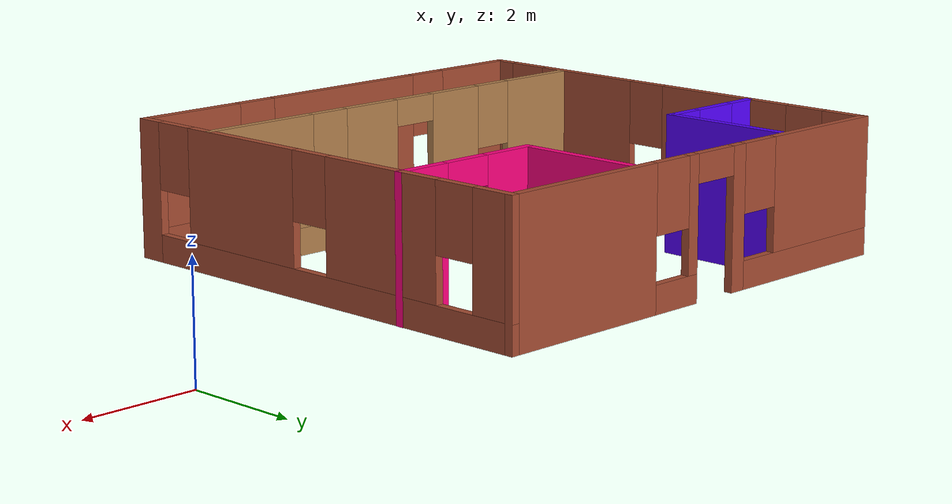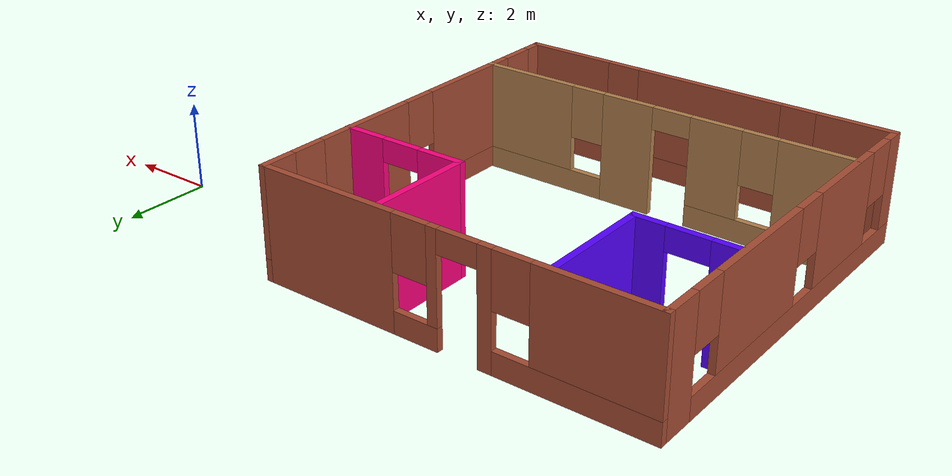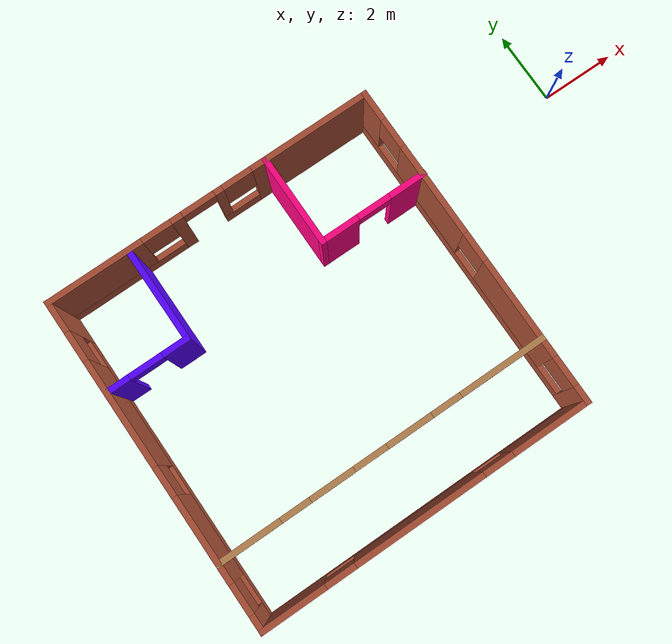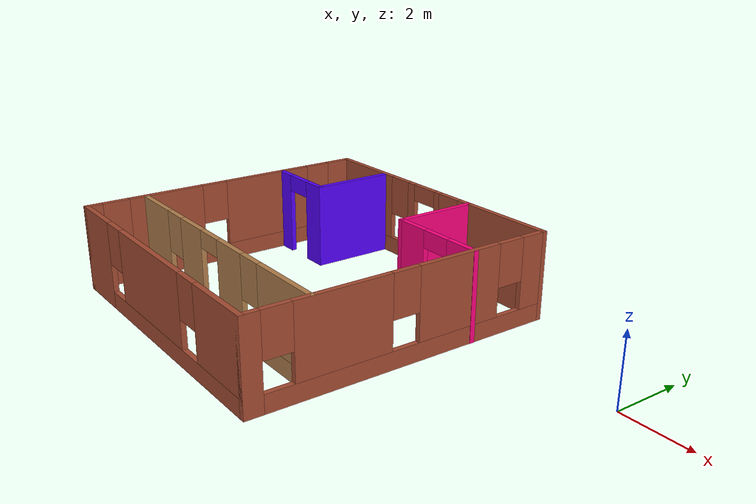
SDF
<?xml version='1.0'?>
<sdf version='1.6'>
  <model name='mybuilding'>
    <pose frame=''>-8.84197 -2.38152 0 0 -0 0</pose>
    <link name='Wall_1'>
      <pose frame=''>-4.43 0 0 0 0 -1.5708</pose>
      <visual name='Wall_1_Visual_0'>
        <pose frame=''>-4.0525 0 1.25 0 -0 0</pose>
        <geometry>
          <box>
            <size>0.895 0.15 2.5</size>
          </box>
        </geometry>
        <material>
          <script>
            <uri>file://media/materials/scripts/gazebo.material</uri>
            <name>Gazebo/Bricks</name>
          </script>
          <ambient>1 1 1 1</ambient>
        </material>
        <meta>
          <layer>0</layer>
        </meta>
      </visual>
      <collision name='Wall_1_Collision_0'>
        <geometry>
          <box>
            <size>0.895 0.15 2.5</size>
          </box>
        </geometry>
        <pose frame=''>-4.0525 0 1.25 0 -0 0</pose>
      </collision>
      <visual name='Wall_1_Visual_1'>
        <pose frame=''>0.4475 0 0.25 0 -0 0</pose>
        <geometry>
          <box>
            <size>8.105 0.15 0.5</size>
          </box>
        </geometry>
        <material>
          <script>
            <uri>file://media/materials/scripts/gazebo.material</uri>
            <name>Gazebo/Bricks</name>
          </script>
          <ambient>1 1 1 1</ambient>
        </material>
        <meta>
          <layer>0</layer>
        </meta>
      </visual>
      <collision name='Wall_1_Collision_1'>
        <geometry>
          <box>
            <size>8.105 0.15 0.5</size>
          </box>
        </geometry>
        <pose frame=''>0.4475 0 0.25 0 -0 0</pose>
      </collision>
      <visual name='Wall_1_Visual_2'>
        <pose frame=''>-1.355 0 1.5 0 -0 0</pose>
        <geometry>
          <box>
            <size>2.9 0.15 2</size>
          </box>
        </geometry>
        <material>
          <script>
            <uri>file://media/materials/scripts/gazebo.material</uri>
            <name>Gazebo/Bricks</name>
          </script>
          <ambient>1 1 1 1</ambient>
        </material>
        <meta>
          <layer>0</layer>
        </meta>
      </visual>
      <collision name='Wall_1_Collision_2'>
        <geometry>
          <box>
            <size>2.9 0.15 2</size>
          </box>
        </geometry>
        <pose frame=''>-1.355 0 1.5 0 -0 0</pose>
      </collision>
      <visual name='Wall_1_Visual_3'>
        <pose frame=''>2.045 0 1.5 0 -0 0</pose>
        <geometry>
          <box>
            <size>2.3 0.15 2</size>
          </box>
        </geometry>
        <material>
          <script>
            <uri>file://media/materials/scripts/gazebo.material</uri>
            <name>Gazebo/Bricks</name>
          </script>
          <ambient>1 1 1 1</ambient>
        </material>
        <meta>
          <layer>0</layer>
        </meta>
      </visual>
      <collision name='Wall_1_Collision_3'>
        <geometry>
          <box>
            <size>2.3 0.15 2</size>
          </box>
        </geometry>
        <pose frame=''>2.045 0 1.5 0 -0 0</pose>
      </collision>
      <visual name='Wall_1_Visual_4'>
        <pose frame=''>4.2475 0 1.5 0 -0 0</pose>
        <geometry>
          <box>
            <size>0.505 0.15 2</size>
          </box>
        </geometry>
        <material>
          <script>
            <uri>file://media/materials/scripts/gazebo.material</uri>
            <name>Gazebo/Bricks</name>
          </script>
          <ambient>1 1 1 1</ambient>
        </material>
        <meta>
          <layer>0</layer>
        </meta>
      </visual>
      <collision name='Wall_1_Collision_4'>
        <geometry>
          <box>
            <size>0.505 0.15 2</size>
          </box>
        </geometry>
        <pose frame=''>4.2475 0 1.5 0 -0 0</pose>
      </collision>
      <visual name='Wall_1_Visual_5'>
        <pose frame=''>-3.205 0 1.9 0 -0 0</pose>
        <geometry>
          <box>
            <size>0.8 0.15 1.2</size>
          </box>
        </geometry>
        <material>
          <script>
            <uri>file://media/materials/scripts/gazebo.material</uri>
            <name>Gazebo/Bricks</name>
          </script>
          <ambient>1 1 1 1</ambient>
        </material>
        <meta>
          <layer>0</layer>
        </meta>
      </visual>
      <collision name='Wall_1_Collision_5'>
        <geometry>
          <box>
            <size>0.8 0.15 1.2</size>
          </box>
        </geometry>
        <pose frame=''>-3.205 0 1.9 0 -0 0</pose>
      </collision>
      <visual name='Wall_1_Visual_6'>
        <pose frame=''>0.495 0 1.9 0 -0 0</pose>
        <geometry>
          <box>
            <size>0.8 0.15 1.2</size>
          </box>
        </geometry>
        <material>
          <script>
            <uri>file://media/materials/scripts/gazebo.material</uri>
            <name>Gazebo/Bricks</name>
          </script>
          <ambient>1 1 1 1</ambient>
        </material>
        <meta>
          <layer>0</layer>
        </meta>
      </visual>
      <collision name='Wall_1_Collision_6'>
        <geometry>
          <box>
            <size>0.8 0.15 1.2</size>
          </box>
        </geometry>
        <pose frame=''>0.495 0 1.9 0 -0 0</pose>
      </collision>
      <visual name='Wall_1_Visual_7'>
        <pose frame=''>3.595 0 1.9 0 -0 0</pose>
        <geometry>
          <box>
            <size>0.8 0.15 1.2</size>
          </box>
        </geometry>
        <material>
          <script>
            <uri>file://media/materials/scripts/gazebo.material</uri>
            <name>Gazebo/Bricks</name>
          </script>
          <ambient>1 1 1 1</ambient>
        </material>
        <meta>
          <layer>0</layer>
        </meta>
      </visual>
      <collision name='Wall_1_Collision_7'>
        <geometry>
          <box>
            <size>0.8 0.15 1.2</size>
          </box>
        </geometry>
        <pose frame=''>3.595 0 1.9 0 -0 0</pose>
      </collision>
    </link>
    <link name='Wall_10'>
      <collision name='Wall_10_Collision'>
        <geometry>
          <box>
            <size>2.5 0.15 2.5</size>
          </box>
        </geometry>
        <pose frame=''>0 0 1.25 0 -0 0</pose>
      </collision>
      <visual name='Wall_10_Visual'>
        <pose frame=''>0 0 1.25 0 -0 0</pose>
        <geometry>
          <box>
            <size>2.5 0.15 2.5</size>
          </box>
        </geometry>
        <material>
          <script>
            <uri>file://media/materials/scripts/gazebo.material</uri>
            <name>Gazebo/Grey</name>
          </script>
          <ambient>1 0 0.498039 1</ambient>
        </material>
        <meta>
          <layer>0</layer>
        </meta>
      </visual>
      <pose frame=''>1.58 3.22 0 0 -0 1.5708</pose>
    </link>
    <link name='Wall_13'>
      <pose frame=''>-0.004999 -2.675 0 0 -0 0</pose>
      <visual name='Wall_13_Visual_0'>
        <pose frame=''>-3.6325 0 1.25 0 -0 0</pose>
        <geometry>
          <box>
            <size>1.735 0.15 2.5</size>
          </box>
        </geometry>
        <material>
          <script>
            <uri>file://media/materials/scripts/gazebo.material</uri>
            <name>Gazebo/Wood</name>
          </script>
          <ambient>1 1 1 1</ambient>
        </material>
        <meta>
          <layer>0</layer>
        </meta>
      </visual>
      <collision name='Wall_13_Collision_0'>
        <geometry>
          <box>
            <size>1.735 0.15 2.5</size>
          </box>
        </geometry>
        <pose frame=''>-3.6325 0 1.25 0 -0 0</pose>
      </collision>
      <visual name='Wall_13_Visual_1'>
        <pose frame=''>0.74 0 1.25 0 -0 0</pose>
        <geometry>
          <box>
            <size>1.23 0.15 2.5</size>
          </box>
        </geometry>
        <material>
          <script>
            <uri>file://media/materials/scripts/gazebo.material</uri>
            <name>Gazebo/Wood</name>
          </script>
          <ambient>1 1 1 1</ambient>
        </material>
        <meta>
          <layer>0</layer>
        </meta>
      </visual>
      <collision name='Wall_13_Collision_1'>
        <geometry>
          <box>
            <size>1.23 0.15 2.5</size>
          </box>
        </geometry>
        <pose frame=''>0.74 0 1.25 0 -0 0</pose>
      </collision>
      <visual name='Wall_13_Visual_2'>
        <pose frame=''>-1.77 0 0.25 0 -0 0</pose>
        <geometry>
          <box>
            <size>1.99 0.15 0.5</size>
          </box>
        </geometry>
        <material>
          <script>
            <uri>file://media/materials/scripts/gazebo.material</uri>
            <name>Gazebo/Wood</name>
          </script>
          <ambient>1 1 1 1</ambient>
        </material>
        <meta>
          <layer>0</layer>
        </meta>
      </visual>
      <collision name='Wall_13_Collision_2'>
        <geometry>
          <box>
            <size>1.99 0.15 0.5</size>
          </box>
        </geometry>
        <pose frame=''>-1.77 0 0.25 0 -0 0</pose>
      </collision>
      <visual name='Wall_13_Visual_3'>
        <pose frame=''>2.9275 0 0.25 0 -0 0</pose>
        <geometry>
          <box>
            <size>3.145 0.15 0.5</size>
          </box>
        </geometry>
        <material>
          <script>
            <uri>file://media/materials/scripts/gazebo.material</uri>
            <name>Gazebo/Wood</name>
          </script>
          <ambient>1 1 1 1</ambient>
        </material>
        <meta>
          <layer>0</layer>
        </meta>
      </visual>
      <collision name='Wall_13_Collision_3'>
        <geometry>
          <box>
            <size>3.145 0.15 0.5</size>
          </box>
        </geometry>
        <pose frame=''>2.9275 0 0.25 0 -0 0</pose>
      </collision>
      <visual name='Wall_13_Visual_4'>
        <pose frame=''>-1.37 0 1.5 0 -0 0</pose>
        <geometry>
          <box>
            <size>1.19 0.15 2</size>
          </box>
        </geometry>
        <material>
          <script>
            <uri>file://media/materials/scripts/gazebo.material</uri>
            <name>Gazebo/Wood</name>
          </script>
          <ambient>1 1 1 1</ambient>
        </material>
        <meta>
          <layer>0</layer>
        </meta>
      </visual>
      <collision name='Wall_13_Collision_4'>
        <geometry>
          <box>
            <size>1.19 0.15 2</size>
          </box>
        </geometry>
        <pose frame=''>-1.37 0 1.5 0 -0 0</pose>
      </collision>
      <visual name='Wall_13_Visual_5'>
        <pose frame=''>-1.37 0 1.5 0 -0 0</pose>
        <geometry>
          <box>
            <size>1.19 0.15 2</size>
          </box>
        </geometry>
        <material>
          <script>
            <uri>file://media/materials/scripts/gazebo.material</uri>
            <name>Gazebo/Wood</name>
          </script>
          <ambient>1 1 1 1</ambient>
        </material>
        <meta>
          <layer>0</layer>
        </meta>
      </visual>
      <collision name='Wall_13_Collision_5'>
        <geometry>
          <box>
            <size>1.19 0.15 2</size>
          </box>
        </geometry>
        <pose frame=''>-1.37 0 1.5 0 -0 0</pose>
      </collision>
      <visual name='Wall_13_Visual_6'>
        <pose frame=''>3.3275 0 1.5 0 -0 0</pose>
        <geometry>
          <box>
            <size>2.345 0.15 2</size>
          </box>
        </geometry>
        <material>
          <script>
            <uri>file://media/materials/scripts/gazebo.material</uri>
            <name>Gazebo/Wood</name>
          </script>
          <ambient>1 1 1 1</ambient>
        </material>
        <meta>
          <layer>0</layer>
        </meta>
      </visual>
      <collision name='Wall_13_Collision_6'>
        <geometry>
          <box>
            <size>2.345 0.15 2</size>
          </box>
        </geometry>
        <pose frame=''>3.3275 0 1.5 0 -0 0</pose>
      </collision>
      <visual name='Wall_13_Visual_7'>
        <pose frame=''>-2.365 0 1.9 0 -0 0</pose>
        <geometry>
          <box>
            <size>0.8 0.15 1.2</size>
          </box>
        </geometry>
        <material>
          <script>
            <uri>file://media/materials/scripts/gazebo.material</uri>
            <name>Gazebo/Wood</name>
          </script>
          <ambient>1 1 1 1</ambient>
        </material>
        <meta>
          <layer>0</layer>
        </meta>
      </visual>
      <collision name='Wall_13_Collision_7'>
        <geometry>
          <box>
            <size>0.8 0.15 1.2</size>
          </box>
        </geometry>
        <pose frame=''>-2.365 0 1.9 0 -0 0</pose>
      </collision>
      <visual name='Wall_13_Visual_8'>
        <pose frame=''>1.755 0 1.9 0 -0 0</pose>
        <geometry>
          <box>
            <size>0.8 0.15 1.2</size>
          </box>
        </geometry>
        <material>
          <script>
            <uri>file://media/materials/scripts/gazebo.material</uri>
            <name>Gazebo/Wood</name>
          </script>
          <ambient>1 1 1 1</ambient>
        </material>
        <meta>
          <layer>0</layer>
        </meta>
      </visual>
      <collision name='Wall_13_Collision_8'>
        <geometry>
          <box>
            <size>0.8 0.15 1.2</size>
          </box>
        </geometry>
        <pose frame=''>1.755 0 1.9 0 -0 0</pose>
      </collision>
      <visual name='Wall_13_Visual_9'>
        <pose frame=''>-0.325 0 2.25 0 -0 0</pose>
        <geometry>
          <box>
            <size>0.9 0.15 0.5</size>
          </box>
        </geometry>
        <material>
          <script>
            <uri>file://media/materials/scripts/gazebo.material</uri>
            <name>Gazebo/Wood</name>
          </script>
          <ambient>1 1 1 1</ambient>
        </material>
        <meta>
          <layer>0</layer>
        </meta>
      </visual>
      <collision name='Wall_13_Collision_9'>
        <geometry>
          <box>
            <size>0.9 0.15 0.5</size>
          </box>
        </geometry>
        <pose frame=''>-0.325 0 2.25 0 -0 0</pose>
      </collision>
      <visual name='Wall_13_Visual_10'>
        <pose frame=''>-0.325 0 2.25 0 -0 0</pose>
        <geometry>
          <box>
            <size>0.9 0.15 0.5</size>
          </box>
        </geometry>
        <material>
          <script>
            <uri>file://media/materials/scripts/gazebo.material</uri>
            <name>Gazebo/Wood</name>
          </script>
          <ambient>1 1 1 1</ambient>
        </material>
        <meta>
          <layer>0</layer>
        </meta>
      </visual>
      <collision name='Wall_13_Collision_10'>
        <geometry>
          <box>
            <size>0.9 0.15 0.5</size>
          </box>
        </geometry>
        <pose frame=''>-0.325 0 2.25 0 -0 0</pose>
      </collision>
    </link>
    <link name='Wall_2'>
      <pose frame=''>-0.004999 -4.425 0 0 -0 0</pose>
      <visual name='Wall_2_Visual_0'>
        <pose frame=''>-3.6225 0 1.25 0 -0 0</pose>
        <geometry>
          <box>
            <size>1.755 0.15 2.5</size>
          </box>
        </geometry>
        <material>
          <script>
            <uri>file://media/materials/scripts/gazebo.material</uri>
            <name>Gazebo/Bricks</name>
          </script>
          <ambient>1 1 1 1</ambient>
        </material>
        <meta>
          <layer>0</layer>
        </meta>
      </visual>
      <collision name='Wall_2_Collision_0'>
        <geometry>
          <box>
            <size>1.755 0.15 2.5</size>
          </box>
        </geometry>
        <pose frame=''>-3.6225 0 1.25 0 -0 0</pose>
      </collision>
      <visual name='Wall_2_Visual_1'>
        <pose frame=''>0.8775 0 0.25 0 -0 0</pose>
        <geometry>
          <box>
            <size>7.245 0.15 0.5</size>
          </box>
        </geometry>
        <material>
          <script>
            <uri>file://media/materials/scripts/gazebo.material</uri>
            <name>Gazebo/Bricks</name>
          </script>
          <ambient>1 1 1 1</ambient>
        </material>
        <meta>
          <layer>0</layer>
        </meta>
      </visual>
      <collision name='Wall_2_Collision_1'>
        <geometry>
          <box>
            <size>7.245 0.15 0.5</size>
          </box>
        </geometry>
        <pose frame=''>0.8775 0 0.25 0 -0 0</pose>
      </collision>
      <visual name='Wall_2_Visual_2'>
        <pose frame=''>-0.195 0 1.5 0 -0 0</pose>
        <geometry>
          <box>
            <size>3.5 0.15 2</size>
          </box>
        </geometry>
        <material>
          <script>
            <uri>file://media/materials/scripts/gazebo.material</uri>
            <name>Gazebo/Bricks</name>
          </script>
          <ambient>1 1 1 1</ambient>
        </material>
        <meta>
          <layer>0</layer>
        </meta>
      </visual>
      <collision name='Wall_2_Collision_2'>
        <geometry>
          <box>
            <size>3.5 0.15 2</size>
          </box>
        </geometry>
        <pose frame=''>-0.195 0 1.5 0 -0 0</pose>
      </collision>
      <visual name='Wall_2_Visual_3'>
        <pose frame=''>3.4275 0 1.5 0 -0 0</pose>
        <geometry>
          <box>
            <size>2.145 0.15 2</size>
          </box>
        </geometry>
        <material>
          <script>
            <uri>file://media/materials/scripts/gazebo.material</uri>
            <name>Gazebo/Bricks</name>
          </script>
          <ambient>1 1 1 1</ambient>
        </material>
        <meta>
          <layer>0</layer>
        </meta>
      </visual>
      <collision name='Wall_2_Collision_3'>
        <geometry>
          <box>
            <size>2.145 0.15 2</size>
          </box>
        </geometry>
        <pose frame=''>3.4275 0 1.5 0 -0 0</pose>
      </collision>
      <visual name='Wall_2_Visual_4'>
        <pose frame=''>-2.345 0 1.9 0 -0 0</pose>
        <geometry>
          <box>
            <size>0.8 0.15 1.2</size>
          </box>
        </geometry>
        <material>
          <script>
            <uri>file://media/materials/scripts/gazebo.material</uri>
            <name>Gazebo/Bricks</name>
          </script>
          <ambient>1 1 1 1</ambient>
        </material>
        <meta>
          <layer>0</layer>
        </meta>
      </visual>
      <collision name='Wall_2_Collision_4'>
        <geometry>
          <box>
            <size>0.8 0.15 1.2</size>
          </box>
        </geometry>
        <pose frame=''>-2.345 0 1.9 0 -0 0</pose>
      </collision>
      <visual name='Wall_2_Visual_5'>
        <pose frame=''>1.955 0 1.9 0 -0 0</pose>
        <geometry>
          <box>
            <size>0.8 0.15 1.2</size>
          </box>
        </geometry>
        <material>
          <script>
            <uri>file://media/materials/scripts/gazebo.material</uri>
            <name>Gazebo/Bricks</name>
          </script>
          <ambient>1 1 1 1</ambient>
        </material>
        <meta>
          <layer>0</layer>
        </meta>
      </visual>
      <collision name='Wall_2_Collision_5'>
        <geometry>
          <box>
            <size>0.8 0.15 1.2</size>
          </box>
        </geometry>
        <pose frame=''>1.955 0 1.9 0 -0 0</pose>
      </collision>
    </link>
    <link name='Wall_3'>
      <pose frame=''>4.42 0 0 0 -0 1.5708</pose>
      <visual name='Wall_3_Visual_0'>
        <pose frame=''>-4.2375 0 1.25 0 -0 0</pose>
        <geometry>
          <box>
            <size>0.525 0.15 2.5</size>
          </box>
        </geometry>
        <material>
          <script>
            <uri>file://media/materials/scripts/gazebo.material</uri>
            <name>Gazebo/Bricks</name>
          </script>
          <ambient>1 1 1 1</ambient>
        </material>
        <meta>
          <layer>0</layer>
        </meta>
      </visual>
      <collision name='Wall_3_Collision_0'>
        <geometry>
          <box>
            <size>0.525 0.15 2.5</size>
          </box>
        </geometry>
        <pose frame=''>-4.2375 0 1.25 0 -0 0</pose>
      </collision>
      <visual name='Wall_3_Visual_1'>
        <pose frame=''>0.2625 0 0.25 0 -0 0</pose>
        <geometry>
          <box>
            <size>8.475 0.15 0.5</size>
          </box>
        </geometry>
        <material>
          <script>
            <uri>file://media/materials/scripts/gazebo.material</uri>
            <name>Gazebo/Bricks</name>
          </script>
          <ambient>1 1 1 1</ambient>
        </material>
        <meta>
          <layer>0</layer>
        </meta>
      </visual>
      <collision name='Wall_3_Collision_1'>
        <geometry>
          <box>
            <size>8.475 0.15 0.5</size>
          </box>
        </geometry>
        <pose frame=''>0.2625 0 0.25 0 -0 0</pose>
      </collision>
      <visual name='Wall_3_Visual_2'>
        <pose frame=''>-1.825 0 1.5 0 -0 0</pose>
        <geometry>
          <box>
            <size>2.7 0.15 2</size>
          </box>
        </geometry>
        <material>
          <script>
            <uri>file://media/materials/scripts/gazebo.material</uri>
            <name>Gazebo/Bricks</name>
          </script>
          <ambient>1 1 1 1</ambient>
        </material>
        <meta>
          <layer>0</layer>
        </meta>
      </visual>
      <collision name='Wall_3_Collision_2'>
        <geometry>
          <box>
            <size>2.7 0.15 2</size>
          </box>
        </geometry>
        <pose frame=''>-1.825 0 1.5 0 -0 0</pose>
      </collision>
      <visual name='Wall_3_Visual_3'>
        <pose frame=''>1.595 0 1.5 0 -0 0</pose>
        <geometry>
          <box>
            <size>2.54 0.15 2</size>
          </box>
        </geometry>
        <material>
          <script>
            <uri>file://media/materials/scripts/gazebo.material</uri>
            <name>Gazebo/Bricks</name>
          </script>
          <ambient>1 1 1 1</ambient>
        </material>
        <meta>
          <layer>0</layer>
        </meta>
      </visual>
      <collision name='Wall_3_Collision_3'>
        <geometry>
          <box>
            <size>2.54 0.15 2</size>
          </box>
        </geometry>
        <pose frame=''>1.595 0 1.5 0 -0 0</pose>
      </collision>
      <visual name='Wall_3_Visual_4'>
        <pose frame=''>4.0825 0 1.5 0 -0 0</pose>
        <geometry>
          <box>
            <size>0.835 0.15 2</size>
          </box>
        </geometry>
        <material>
          <script>
            <uri>file://media/materials/scripts/gazebo.material</uri>
            <name>Gazebo/Bricks</name>
          </script>
          <ambient>1 1 1 1</ambient>
        </material>
        <meta>
          <layer>0</layer>
        </meta>
      </visual>
      <collision name='Wall_3_Collision_4'>
        <geometry>
          <box>
            <size>0.835 0.15 2</size>
          </box>
        </geometry>
        <pose frame=''>4.0825 0 1.5 0 -0 0</pose>
      </collision>
      <visual name='Wall_3_Visual_5'>
        <pose frame=''>-3.575 0 1.9 0 -0 0</pose>
        <geometry>
          <box>
            <size>0.8 0.15 1.2</size>
          </box>
        </geometry>
        <material>
          <script>
            <uri>file://media/materials/scripts/gazebo.material</uri>
            <name>Gazebo/Bricks</name>
          </script>
          <ambient>1 1 1 1</ambient>
        </material>
        <meta>
          <layer>0</layer>
        </meta>
      </visual>
      <collision name='Wall_3_Collision_5'>
        <geometry>
          <box>
            <size>0.8 0.15 1.2</size>
          </box>
        </geometry>
        <pose frame=''>-3.575 0 1.9 0 -0 0</pose>
      </collision>
      <visual name='Wall_3_Visual_6'>
        <pose frame=''>-0.075 0 1.9 0 -0 0</pose>
        <geometry>
          <box>
            <size>0.8 0.15 1.2</size>
          </box>
        </geometry>
        <material>
          <script>
            <uri>file://media/materials/scripts/gazebo.material</uri>
            <name>Gazebo/Bricks</name>
          </script>
          <ambient>1 1 1 1</ambient>
        </material>
        <meta>
          <layer>0</layer>
        </meta>
      </visual>
      <collision name='Wall_3_Collision_6'>
        <geometry>
          <box>
            <size>0.8 0.15 1.2</size>
          </box>
        </geometry>
        <pose frame=''>-0.075 0 1.9 0 -0 0</pose>
      </collision>
      <visual name='Wall_3_Visual_7'>
        <pose frame=''>3.265 0 1.9 0 -0 0</pose>
        <geometry>
          <box>
            <size>0.8 0.15 1.2</size>
          </box>
        </geometry>
        <material>
          <script>
            <uri>file://media/materials/scripts/gazebo.material</uri>
            <name>Gazebo/Bricks</name>
          </script>
          <ambient>1 1 1 1</ambient>
        </material>
        <meta>
          <layer>0</layer>
        </meta>
      </visual>
      <collision name='Wall_3_Collision_7'>
        <geometry>
          <box>
            <size>0.8 0.15 1.2</size>
          </box>
        </geometry>
        <pose frame=''>3.265 0 1.9 0 -0 0</pose>
      </collision>
    </link>
    <link name='Wall_4'>
      <pose frame=''>-0.004999 4.425 0 0 -0 3.14159</pose>
      <visual name='Wall_4_Visual_0'>
        <pose frame=''>-2.8375 0 1.25 0 -0 0</pose>
        <geometry>
          <box>
            <size>3.325 0.15 2.5</size>
          </box>
        </geometry>
        <material>
          <script>
            <uri>file://media/materials/scripts/gazebo.material</uri>
            <name>Gazebo/Bricks</name>
          </script>
          <ambient>1 1 1 1</ambient>
        </material>
        <meta>
          <layer>0</layer>
        </meta>
      </visual>
      <collision name='Wall_4_Collision_0'>
        <geometry>
          <box>
            <size>3.325 0.15 2.5</size>
          </box>
        </geometry>
        <pose frame=''>-2.8375 0 1.25 0 -0 0</pose>
      </collision>
      <visual name='Wall_4_Visual_1'>
        <pose frame=''>0.91 0 1.25 0 -0 0</pose>
        <geometry>
          <box>
            <size>0.31 0.15 2.5</size>
          </box>
        </geometry>
        <material>
          <script>
            <uri>file://media/materials/scripts/gazebo.material</uri>
            <name>Gazebo/Bricks</name>
          </script>
          <ambient>1 1 1 1</ambient>
        </material>
        <meta>
          <layer>0</layer>
        </meta>
      </visual>
      <collision name='Wall_4_Collision_1'>
        <geometry>
          <box>
            <size>0.31 0.15 2.5</size>
          </box>
        </geometry>
        <pose frame=''>0.91 0 1.25 0 -0 0</pose>
      </collision>
      <visual name='Wall_4_Visual_2'>
        <pose frame=''>-0.66 0 0.25 0 -0 0</pose>
        <geometry>
          <box>
            <size>1.03 0.15 0.5</size>
          </box>
        </geometry>
        <material>
          <script>
            <uri>file://media/materials/scripts/gazebo.material</uri>
            <name>Gazebo/Bricks</name>
          </script>
          <ambient>1 1 1 1</ambient>
        </material>
        <meta>
          <layer>0</layer>
        </meta>
      </visual>
      <collision name='Wall_4_Collision_2'>
        <geometry>
          <box>
            <size>1.03 0.15 0.5</size>
          </box>
        </geometry>
        <pose frame=''>-0.66 0 0.25 0 -0 0</pose>
      </collision>
      <visual name='Wall_4_Visual_3'>
        <pose frame=''>2.7825 0 0.25 0 -0 0</pose>
        <geometry>
          <box>
            <size>3.435 0.15 0.5</size>
          </box>
        </geometry>
        <material>
          <script>
            <uri>file://media/materials/scripts/gazebo.material</uri>
            <name>Gazebo/Bricks</name>
          </script>
          <ambient>1 1 1 1</ambient>
        </material>
        <meta>
          <layer>0</layer>
        </meta>
      </visual>
      <collision name='Wall_4_Collision_3'>
        <geometry>
          <box>
            <size>3.435 0.15 0.5</size>
          </box>
        </geometry>
        <pose frame=''>2.7825 0 0.25 0 -0 0</pose>
      </collision>
      <visual name='Wall_4_Visual_4'>
        <pose frame=''>-0.26 0 1.5 0 -0 0</pose>
        <geometry>
          <box>
            <size>0.23 0.15 2</size>
          </box>
        </geometry>
        <material>
          <script>
            <uri>file://media/materials/scripts/gazebo.material</uri>
            <name>Gazebo/Bricks</name>
          </script>
          <ambient>1 1 1 1</ambient>
        </material>
        <meta>
          <layer>0</layer>
        </meta>
      </visual>
      <collision name='Wall_4_Collision_4'>
        <geometry>
          <box>
            <size>0.23 0.15 2</size>
          </box>
        </geometry>
        <pose frame=''>-0.26 0 1.5 0 -0 0</pose>
      </collision>
      <visual name='Wall_4_Visual_5'>
        <pose frame=''>-0.26 0 1.5 0 -0 0</pose>
        <geometry>
          <box>
            <size>0.23 0.15 2</size>
          </box>
        </geometry>
        <material>
          <script>
            <uri>file://media/materials/scripts/gazebo.material</uri>
            <name>Gazebo/Bricks</name>
          </script>
          <ambient>1 1 1 1</ambient>
        </material>
        <meta>
          <layer>0</layer>
        </meta>
      </visual>
      <collision name='Wall_4_Collision_5'>
        <geometry>
          <box>
            <size>0.23 0.15 2</size>
          </box>
        </geometry>
        <pose frame=''>-0.26 0 1.5 0 -0 0</pose>
      </collision>
      <visual name='Wall_4_Visual_6'>
        <pose frame=''>3.1825 0 1.5 0 -0 0</pose>
        <geometry>
          <box>
            <size>2.635 0.15 2</size>
          </box>
        </geometry>
        <material>
          <script>
            <uri>file://media/materials/scripts/gazebo.material</uri>
            <name>Gazebo/Bricks</name>
          </script>
          <ambient>1 1 1 1</ambient>
        </material>
        <meta>
          <layer>0</layer>
        </meta>
      </visual>
      <collision name='Wall_4_Collision_6'>
        <geometry>
          <box>
            <size>2.635 0.15 2</size>
          </box>
        </geometry>
        <pose frame=''>3.1825 0 1.5 0 -0 0</pose>
      </collision>
      <visual name='Wall_4_Visual_7'>
        <pose frame=''>-0.775 0 1.9 0 -0 0</pose>
        <geometry>
          <box>
            <size>0.8 0.15 1.2</size>
          </box>
        </geometry>
        <material>
          <script>
            <uri>file://media/materials/scripts/gazebo.material</uri>
            <name>Gazebo/Bricks</name>
          </script>
          <ambient>1 1 1 1</ambient>
        </material>
        <meta>
          <layer>0</layer>
        </meta>
      </visual>
      <collision name='Wall_4_Collision_7'>
        <geometry>
          <box>
            <size>0.8 0.15 1.2</size>
          </box>
        </geometry>
        <pose frame=''>-0.775 0 1.9 0 -0 0</pose>
      </collision>
      <visual name='Wall_4_Visual_8'>
        <pose frame=''>1.465 0 1.9 0 -0 0</pose>
        <geometry>
          <box>
            <size>0.8 0.15 1.2</size>
          </box>
        </geometry>
        <material>
          <script>
            <uri>file://media/materials/scripts/gazebo.material</uri>
            <name>Gazebo/Bricks</name>
          </script>
          <ambient>1 1 1 1</ambient>
        </material>
        <meta>
          <layer>0</layer>
        </meta>
      </visual>
      <collision name='Wall_4_Collision_8'>
        <geometry>
          <box>
            <size>0.8 0.15 1.2</size>
          </box>
        </geometry>
        <pose frame=''>1.465 0 1.9 0 -0 0</pose>
      </collision>
      <visual name='Wall_4_Visual_9'>
        <pose frame=''>0.305 0 2.25 0 -0 0</pose>
        <geometry>
          <box>
            <size>0.9 0.15 0.5</size>
          </box>
        </geometry>
        <material>
          <script>
            <uri>file://media/materials/scripts/gazebo.material</uri>
            <name>Gazebo/Bricks</name>
          </script>
          <ambient>1 1 1 1</ambient>
        </material>
        <meta>
          <layer>0</layer>
        </meta>
      </visual>
      <collision name='Wall_4_Collision_9'>
        <geometry>
          <box>
            <size>0.9 0.15 0.5</size>
          </box>
        </geometry>
        <pose frame=''>0.305 0 2.25 0 -0 0</pose>
      </collision>
      <visual name='Wall_4_Visual_10'>
        <pose frame=''>0.305 0 2.25 0 -0 0</pose>
        <geometry>
          <box>
            <size>0.9 0.15 0.5</size>
          </box>
        </geometry>
        <material>
          <script>
            <uri>file://media/materials/scripts/gazebo.material</uri>
            <name>Gazebo/Bricks</name>
          </script>
          <ambient>1 1 1 1</ambient>
        </material>
        <meta>
          <layer>0</layer>
        </meta>
      </visual>
      <collision name='Wall_4_Collision_10'>
        <geometry>
          <box>
            <size>0.9 0.15 0.5</size>
          </box>
        </geometry>
        <pose frame=''>0.305 0 2.25 0 -0 0</pose>
      </collision>
    </link>
    <link name='Wall_6'>
      <pose frame=''>-3.3 1.925 0 0 -0 0</pose>
      <visual name='Wall_6_Visual_0'>
        <pose frame=''>-0.8225 0 1.25 0 -0 0</pose>
        <geometry>
          <box>
            <size>0.604999 0.15 2.5</size>
          </box>
        </geometry>
        <material>
          <script>
            <uri>file://media/materials/scripts/gazebo.material</uri>
            <name>Gazebo/Grey</name>
          </script>
          <ambient>0.333333 0 1 1</ambient>
        </material>
        <meta>
          <layer>0</layer>
        </meta>
      </visual>
      <collision name='Wall_6_Collision_0'>
        <geometry>
          <box>
            <size>0.604999 0.15 2.5</size>
          </box>
        </geometry>
        <pose frame=''>-0.8225 0 1.25 0 -0 0</pose>
      </collision>
      <visual name='Wall_6_Visual_1'>
        <pose frame=''>0.7525 0 1.25 0 -0 0</pose>
        <geometry>
          <box>
            <size>0.745001 0.15 2.5</size>
          </box>
        </geometry>
        <material>
          <script>
            <uri>file://media/materials/scripts/gazebo.material</uri>
            <name>Gazebo/Grey</name>
          </script>
          <ambient>0.333333 0 1 1</ambient>
        </material>
        <meta>
          <layer>0</layer>
        </meta>
      </visual>
      <collision name='Wall_6_Collision_1'>
        <geometry>
          <box>
            <size>0.745001 0.15 2.5</size>
          </box>
        </geometry>
        <pose frame=''>0.7525 0 1.25 0 -0 0</pose>
      </collision>
      <visual name='Wall_6_Visual_2'>
        <pose frame=''>-0.070001 0 2.25 0 -0 0</pose>
        <geometry>
          <box>
            <size>0.9 0.15 0.5</size>
          </box>
        </geometry>
        <material>
          <script>
            <uri>file://media/materials/scripts/gazebo.material</uri>
            <name>Gazebo/Grey</name>
          </script>
          <ambient>0.333333 0 1 1</ambient>
        </material>
        <meta>
          <layer>0</layer>
        </meta>
      </visual>
      <collision name='Wall_6_Collision_2'>
        <geometry>
          <box>
            <size>0.9 0.15 0.5</size>
          </box>
        </geometry>
        <pose frame=''>-0.070001 0 2.25 0 -0 0</pose>
      </collision>
    </link>
    <link name='Wall_7'>
      <collision name='Wall_7_Collision'>
        <geometry>
          <box>
            <size>2.5 0.15 2.5</size>
          </box>
        </geometry>
        <pose frame=''>0 0 1.25 0 -0 0</pose>
      </collision>
      <visual name='Wall_7_Visual'>
        <pose frame=''>0 0 1.25 0 -0 0</pose>
        <geometry>
          <box>
            <size>2.5 0.15 2.5</size>
          </box>
        </geometry>
        <material>
          <script>
            <uri>file://media/materials/scripts/gazebo.material</uri>
            <name>Gazebo/Grey</name>
          </script>
          <ambient>0.333333 0 1 1</ambient>
        </material>
        <meta>
          <layer>0</layer>
        </meta>
      </visual>
      <pose frame=''>-2.25 3.1 0 0 -0 1.5708</pose>
    </link>
    <link name='Wall_9'>
      <pose frame=''>3.005 2.045 0 0 -0 3.14159</pose>
      <visual name='Wall_9_Visual_0'>
        <pose frame=''>-0.9875 0 1.25 0 -0 0</pose>
        <geometry>
          <box>
            <size>1.025 0.15 2.5</size>
          </box>
        </geometry>
        <material>
          <script>
            <uri>file://media/materials/scripts/gazebo.material</uri>
            <name>Gazebo/Grey</name>
          </script>
          <ambient>1 0 0.498039 1</ambient>
        </material>
        <meta>
          <layer>0</layer>
        </meta>
      </visual>
      <collision name='Wall_9_Collision_0'>
        <geometry>
          <box>
            <size>1.025 0.15 2.5</size>
          </box>
        </geometry>
        <pose frame=''>-0.9875 0 1.25 0 -0 0</pose>
      </collision>
      <visual name='Wall_9_Visual_1'>
        <pose frame=''>0.9625 0 1.25 0 -0 0</pose>
        <geometry>
          <box>
            <size>1.075 0.15 2.5</size>
          </box>
        </geometry>
        <material>
          <script>
            <uri>file://media/materials/scripts/gazebo.material</uri>
            <name>Gazebo/Grey</name>
          </script>
          <ambient>1 0 0.498039 1</ambient>
        </material>
        <meta>
          <layer>0</layer>
        </meta>
      </visual>
      <collision name='Wall_9_Collision_1'>
        <geometry>
          <box>
            <size>1.075 0.15 2.5</size>
          </box>
        </geometry>
        <pose frame=''>0.9625 0 1.25 0 -0 0</pose>
      </collision>
      <visual name='Wall_9_Visual_2'>
        <pose frame=''>-0.025 0 2.25 0 -0 0</pose>
        <geometry>
          <box>
            <size>0.9 0.15 0.5</size>
          </box>
        </geometry>
        <material>
          <script>
            <uri>file://media/materials/scripts/gazebo.material</uri>
            <name>Gazebo/Grey</name>
          </script>
          <ambient>1 0 0.498039 1</ambient>
        </material>
        <meta>
          <layer>0</layer>
        </meta>
      </visual>
      <collision name='Wall_9_Collision_2'>
        <geometry>
          <box>
            <size>0.9 0.15 0.5</size>
          </box>
        </geometry>
        <pose frame=''>-0.025 0 2.25 0 -0 0</pose>
      </collision>
    </link>
    <static>1</static>
  </model>
</sdf>
